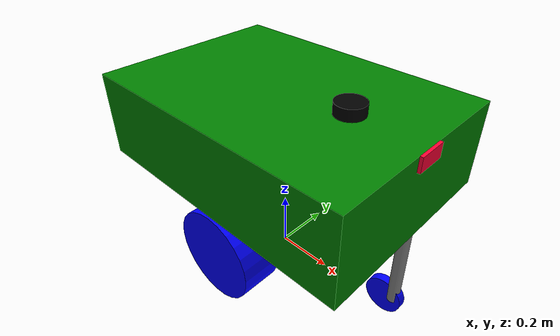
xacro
<?xml version="1.0"?>
<robot name="g4_robot" xmlns:xacro="http://www.ros.org/wiki/xacro">

    <xacro:include filename="common_properties.xacro" />
    <xacro:include filename="mobile_robot.xacro" />
    <xacro:include filename="mobile_robot_isaac_sim.xacro" />
    <xacro:include filename="lidar.xacro" />

</robot>

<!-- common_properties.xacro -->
<robot xmlns:xacro="http://www.ros.org/wiki/xacro">

    <material name="grey">
        <color rgba="0.5 0.5 0.5 1" />
    </material>

    <material name="green">
        <color rgba="0 0.5 0 1" />
    </material>

    <material name="blue">
        <color rgba="0 0 1 1" />
    </material>

    <material name="yellow">
        <color rgba="0.5 0.5 0 1" />
    </material>

    <material name="orange">
        <color rgba="1 0.5 0 1" />
    </material>

    <material name="red">
        <color rgba="1 0 0.2 1" />
    </material>

    <material name="black">
        <color rgba="0 0 0 1" />
    </material>

    <xacro:macro name="box_inertia" params="mass l w h xyz rpy">
        <inertial>
            <origin xyz="${xyz}" rpy="0 0 0" />
            <mass value="${mass}" />
            <inertia ixx="${mass/12 * (h*h + l*l)}" ixy="0" ixz="0"
                     iyy="${mass/12 * (w*w + l*l)}" iyz="0"
                     izz="${mass/12 * (h*h + w*w)}" />
        </inertial>
    </xacro:macro>

    <xacro:macro name="wheel_inertia" params="mass l r xyz rpy">
        <inertial>
            <origin xyz="${xyz}" rpy="${rpy}" />
            <mass value="${mass}" />
            <inertia ixx="${mass/12 * (3*r*r + l*l)}" ixy="0" ixz="0"
                     iyy="${mass/12 * (3*r*r + l*l)}" iyz="0"
                     izz="${mass/2 * (r*r)}" />
        </inertial>
    </xacro:macro>

</robot>

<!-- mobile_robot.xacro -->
<robot xmlns:xacro="http://www.ros.org/wiki/xacro">

    <xacro:property name="wheel_r" value="0.16" /> <!-- without load the wheel diameter is 0.35 (radius = 0.175) so might go between 0.16 - 0.17 with standard load -->
    <xacro:property name="wheel_l" value="0.14" />
    <xacro:property name="wheel_axis_h" value="0.18802" />

    <xacro:property name="hinge_l" value="${wheel_r - small_wheel_r + wheel_axis_h}" />
    <xacro:property name="hinge_r" value="0.02" />

    <xacro:property name="small_wheel_r" value="0.063" />
    <xacro:property name="small_wheel_l" value="0.028" />
    <xacro:property name="axis_dist" value="0.03" />

    <xacro:property name="base_l" value="1.0" />
    <xacro:property name="base_w" value="0.7" />
    <xacro:property name="base_h" value="0.3" />
    <xacro:property name="base_xyz" value="0 0 0" /> <!-- ${base_h / 2} : what z used to be -->
    <xacro:property name="wheel_rpy" value="${pi / 2.0} 0 0" />

    <xacro:property name="camera_l" value="0.01" />
    <xacro:property name="camera_w" value="0.1" />
    <xacro:property name="camera_h" value="0.05" />

    <!-- body -->

    <link name="base_footprint" />

    <link name="base_link">
        <visual>
            <geometry>
                <box size="${base_l} ${base_w} ${base_h}" />
            </geometry>
            <origin xyz="${base_xyz}" rpy="0 0 0" />
            <material name="green" />
        </visual>
        <collision>
            <geometry>
                <box size="${base_l} ${base_w} ${base_h}" />
            </geometry>
            <origin xyz="${base_xyz}" rpy="0 0 0" />
        </collision>
        <xacro:box_inertia mass="25.0" l="${2*base_l}" w="${2*base_w}" h="${2*base_h}" xyz="${base_xyz}" rpy="0 0 0" />
    </link>

    <joint name="footprint_base_joint" type="fixed">
        <parent link="base_footprint" />
        <child link="base_link" />
        <origin xyz="0 0 ${wheel_r + wheel_axis_h + (base_h / 2.0)}" rpy="0 0 0" /> <!-- + (base_h / 2) -->
    </joint>

    <!-- wheel funtions -->

    <xacro:macro name="create_wheel_link" params="prefix">

    <link name="${prefix}_wheel_link">
        <visual>
            <geometry>
                <cylinder radius="${wheel_r}" length="${wheel_l}" />
            </geometry>
            <origin xyz="0 0 0" rpy="${wheel_rpy}" />
            <material name="blue" />
        </visual>
        <collision>
            <geometry>
                <cylinder radius="${wheel_r}" length="${wheel_l}" />
            </geometry>
            <origin xyz="0 0 0" rpy="${wheel_rpy}" />
        </collision>
        <xacro:wheel_inertia mass="3.0" l="${2*wheel_l}" r="${2*wheel_r}" xyz="0 0 0" rpy="${wheel_rpy}" />
    </link>

    </xacro:macro>

    <xacro:macro name="create_small_wheel_link" params="prefix">

    <link name="${prefix}_wheel_link">
        <visual>
            <geometry>
                <cylinder radius="${small_wheel_r}" length="${small_wheel_l}" />
            </geometry>
            <origin xyz="0 0 0" rpy="${wheel_rpy}" />
            <material name="blue" />
        </visual>
        <collision>
            <geometry>
                <cylinder radius="${small_wheel_r}" length="${small_wheel_l}" />
            </geometry>
            <origin xyz="0 0 0" rpy="${wheel_rpy}" />
        </collision>
        <xacro:wheel_inertia mass="1.5" l="${2*small_wheel_l}" r="${2*small_wheel_r}" xyz="0 0 0" rpy="${wheel_rpy}" />
    </link>

    </xacro:macro>

    <!-- wheels creations -->

    <xacro:create_wheel_link prefix="left" />

    <joint name="left_wheel_joint" type="continuous">
        <parent link="base_link" />
        <child link="left_wheel_link" />
        <origin xyz="0 ${(base_w - wheel_r) / 2} ${-(base_h / 2) - wheel_axis_h}" rpy="0 0 0" />
        <axis xyz="0 1 0" />
        <limit velocity="100.0" lower="-6.283185307179586" upper="6.283185307179586" effort="100.0" /> <!-- random -->
        <dynamics damping="0.1" friction="0.1"/>
    </joint>

    <xacro:create_wheel_link prefix="right" />

    <joint name="right_wheel_joint" type="continuous">
        <parent link="base_link" />
        <child link="right_wheel_link" />
        <origin xyz="0 ${-((base_w - wheel_r) / 2)} ${-(base_h / 2) - wheel_axis_h}" rpy="0 0 0" />
        <axis xyz="0 1 0" />
        <limit velocity="100.0" lower="-6.283185307179586" upper="6.283185307179586" effort="100.0" /> <!-- random -->
        <dynamics damping="0.1" friction="0.1"/>
    </joint>

    <!-- Front -->

    <link name="front_hinge">
        <visual>
            <geometry>
                <cylinder radius="${hinge_r}" length="${hinge_l}" />
            </geometry>
            <origin xyz="0 0 ${hinge_l / 2.0}" rpy="0 0 0" />
            <material name="grey" />
        </visual>
        <collision>
            <geometry>
                <cylinder radius="${hinge_r}" length="${hinge_l}" />
            </geometry>
            <origin xyz="0 0 ${hinge_l / 2.0}" rpy="0 0 0" />
        </collision>
        <xacro:wheel_inertia mass="0.5" l="${2*hinge_l}" r="${2*hinge_r}" xyz="0 0 ${hinge_l / 2.0}" rpy="0 0 0" />
    </link>

    <joint name="front_hinge_joint" type="continuous">
        <parent link="base_link" />
        <child link="front_hinge" />
        <origin xyz="0.48 0 ${-((base_h / 2.0) + wheel_r - small_wheel_r + wheel_axis_h)}" rpy="0 0 0" />
        <axis xyz="0 0 1" />
    </joint>

    <xacro:create_small_wheel_link prefix="front" />

    <joint name="front_wheel_joint" type="continuous">
        <parent link="front_hinge" />
        <child link="front_wheel_link" />
        <origin xyz="${-axis_dist} 0 0" rpy="0 0 0" />
        <axis xyz="0 1 0" />
    </joint>

    <!-- Rear -->

    <link name="rear_hinge">
        <visual>
            <geometry>
                <cylinder radius="${hinge_r}" length="${hinge_l}" />
            </geometry>
            <origin xyz="0 0 ${(hinge_l) / 2.0}" rpy="0 0 0" />
            <material name="grey" />
        </visual>
        <collision>
            <geometry>
                <cylinder radius="${hinge_r}" length="${hinge_l}" />
            </geometry>
            <origin xyz="0 0 ${(hinge_l) / 2.0}" rpy="0 0 0" />
        </collision>
        <xacro:wheel_inertia mass="0.5" l="${2*hinge_l}" r="${2*hinge_r}" xyz="0 0 ${(hinge_l) / 2.0}" rpy="0 0 0" />
    </link>

    <joint name="rear_hinge_joint" type="continuous">
        <parent link="base_link" />
        <child link="rear_hinge" />
        <origin xyz="-0.48 0 ${-((base_h / 2) + wheel_r - small_wheel_r + wheel_axis_h)}" rpy="0 0 0" />
        <axis xyz="0 0 1" />
    </joint>

    <xacro:create_small_wheel_link prefix="rear" />

    <joint name="rear_wheel_joint" type="continuous">
        <parent link="rear_hinge" />
        <child link="rear_wheel_link" />
        <origin xyz="${-axis_dist} 0 0" rpy="0 0 0" />
         <axis xyz="0 1 0" />
    </joint>

    <!-- camera -->

    <link name="camera_link">
        <visual>
            <geometry>
                <box size="${camera_l} ${camera_w} ${camera_h}" />
            </geometry>
            <origin xyz="${-(camera_l / 2.0)} 0 0" rpy="0 0 0" />
            <material name="red" />
        </visual>
        <collision>
            <geometry>
                <box size="${camera_l} ${camera_w} ${camera_h}" />
            </geometry>
            <origin xyz="${-(camera_l / 2.0)} 0 0" rpy="0 0 0" />
        </collision>
        <xacro:box_inertia mass="0.1" l="${camera_l}" w="${camera_w}" h="${camera_h}" xyz="0 0 0" rpy="0 0 0" />
    </link>

    <joint name="base_camera_joint" type="fixed">
        <parent link="base_link" />
        <child link="camera_link" />
        <origin xyz="${(base_l) / 2.0 + camera_l} 0 ${(base_h / 2.0) - (camera_h / 2.0)}" rpy="0 0 0" />
    </joint>

    <!--               camera for sensors                -->

    <!-- these values have to be these values otherwise the gazebo camera
        image won't be aligned properly with the frame it is supposedly
        originating from -->

</robot>

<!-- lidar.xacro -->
<robot xmlns:xacro="http://www.ros.org/wiki/xacro">

    <xacro:property name="lidar_radius" value="0.05" />
    <xacro:property name="lidar_h" value="0.04" />

    <!--   Lidar        -->

    <link name="lidar_link">
        <visual>
            <geometry>
                <cylinder radius="${lidar_radius}" length="${lidar_h}" />
            </geometry>
            <material name="black" />
        </visual>
        <collision>
            <geometry>
                <cylinder radius="${lidar_radius}" length="${lidar_h}" />
            </geometry>
        </collision>
        <xacro:wheel_inertia mass="0.1" l="${2*lidar_h}" r="${2*lidar_radius}" xyz="0 0 0" rpy="0 0 0" />
    </link>

    <joint name="base_lidar_joint" type="fixed">
        <parent link="base_link" />
        <child link="lidar_link" />
        <origin xyz="${base_l / 4.0} 0 ${(base_h / 2.0) + (lidar_h / 2.0)}" rpy="0 0 0" />
    </joint>

    <!-- ${-(pi) / 12.0 * 11} = -2.87979327-->

</robot>
